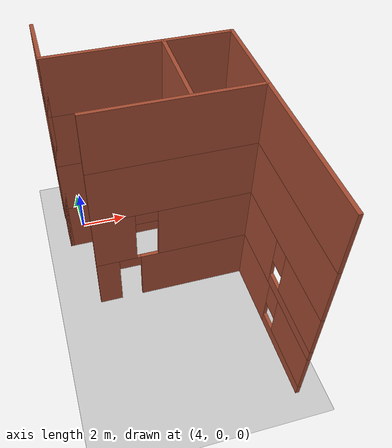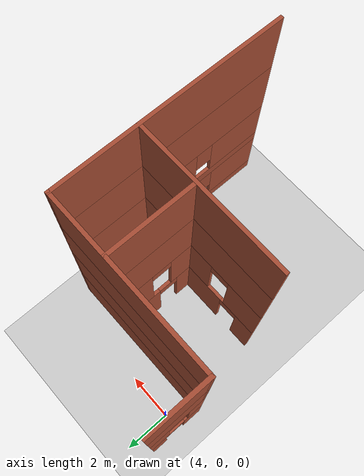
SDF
<sdf version="1.7">
 <world name="default">
  <model name="ground_plane">
   <static>1</static>
   <link name="link">
    <collision name="collision">
     <geometry><plane><normal>0 0 1</normal><size>300 300</size></plane></geometry>
     <surface>
      <contact><collide_bitmask>65535</collide_bitmask></contact>
      <friction><ode><mu>100</mu><mu2>50</mu2></ode></friction>
     </surface>
    </collision>
    <visual name="visual">
     <cast_shadows>0</cast_shadows>
     <geometry><plane><normal>0 0 1</normal><size>300 300</size></plane></geometry>
     <material>
      <script><uri>file://media/materials/scripts/gazebo.material</uri><name>Gazebo/Grey</name></script>
     </material>
    </visual>
   </link>
  </model>
  <model name="Drone_House">
   <pose>2.65602 -2.34694 0 0 -0 0</pose>
   <link name="Wall_101">
    <collision name="Wall_101_Collision">
     <geometry><box><size>6.5 0.15 2.5</size></box></geometry>
     <pose>0 0 1.25 0 -0 0</pose>
    </collision>
    <visual name="Wall_101_Visual">
     <pose>0 0 1.25 0 -0 0</pose>
     <geometry><box><size>6.5 0.15 2.5</size></box></geometry>
     <material>
      <script><uri>file://media/materials/scripts/gazebo.material</uri><name>Gazebo/Bricks</name></script>
      <ambient>1 1 1 1</ambient>
     </material>
     <meta><layer>2</layer></meta>
    </visual>
    <pose>4.55106 -2.25 5 0 -0 0</pose>
   </link>
   <link name="Wall_105">
    <collision name="Wall_105_Collision">
     <geometry><box><size>3.5 0.15 2.5</size></box></geometry>
     <pose>0 0 1.25 0 -0 0</pose>
    </collision>
    <visual name="Wall_105_Visual">
     <pose>0 0 1.25 0 -0 0</pose>
     <geometry><box><size>3.5 0.15 2.5</size></box></geometry>
     <material>
      <script><uri>file://media/materials/scripts/gazebo.material</uri><name>Gazebo/Bricks</name></script>
      <ambient>1 1 1 1</ambient>
     </material>
     <meta><layer>2</layer></meta>
    </visual>
    <pose>5.09404 -0.429379 5 0 -0 -1.5708</pose>
   </link>
   <link name="Wall_116">
    <collision name="Wall_116_Collision">
     <geometry><box><size>2.5 0.15 2.5</size></box></geometry>
     <pose>0 0 1.25 0 -0 0</pose>
    </collision>
    <visual name="Wall_116_Visual">
     <pose>0 0 1.25 0 -0 0</pose>
     <geometry><box><size>2.5 0.15 2.5</size></box></geometry>
     <material>
      <script><uri>file://media/materials/scripts/gazebo.material</uri><name>Gazebo/Bricks</name></script>
      <ambient>1 1 1 1</ambient>
     </material>
     <meta><layer>3</layer></meta>
    </visual>
    <pose>0.626064 2.425 7.5 0 -0 -1.5708</pose>
   </link>
   <link name="Wall_117">
    <collision name="Wall_117_Collision">
     <geometry><box><size>7.25 0.15 2.5</size></box></geometry>
     <pose>0 0 1.25 0 -0 0</pose>
    </collision>
    <visual name="Wall_117_Visual">
     <pose>0 0 1.25 0 -0 0</pose>
     <geometry><box><size>7.25 0.15 2.5</size></box></geometry>
     <material>
      <script><uri>file://media/materials/scripts/gazebo.material</uri><name>Gazebo/Bricks</name></script>
      <ambient>1 1 1 1</ambient>
     </material>
     <meta><layer>3</layer></meta>
    </visual>
    <pose>4.17606 1.25 7.5 0 -0 0</pose>
   </link>
   <link name="Wall_120">
    <collision name="Wall_120_Collision">
     <geometry><box><size>9.75 0.15 2.5</size></box></geometry>
     <pose>0 0 1.25 0 -0 0</pose>
    </collision>
    <visual name="Wall_120_Visual">
     <pose>0 0 1.25 0 -0 0</pose>
     <geometry><box><size>9.75 0.15 2.5</size></box></geometry>
     <material>
      <script><uri>file://media/materials/scripts/gazebo.material</uri><name>Gazebo/Bricks</name></script>
      <ambient>1 1 1 1</ambient>
     </material>
     <meta><layer>3</layer></meta>
    </visual>
    <pose>7.72606 -3.55 7.5 0 -0 -1.5708</pose>
   </link>
   <link name="Wall_123">
    <collision name="Wall_123_Collision">
     <geometry><box><size>6.5 0.15 2.5</size></box></geometry>
     <pose>0 0 1.25 0 -0 0</pose>
    </collision>
    <visual name="Wall_123_Visual">
     <pose>0 0 1.25 0 -0 0</pose>
     <geometry><box><size>6.5 0.15 2.5</size></box></geometry>
     <material>
      <script><uri>file://media/materials/scripts/gazebo.material</uri><name>Gazebo/Bricks</name></script>
      <ambient>1 1 1 1</ambient>
     </material>
     <meta><layer>3</layer></meta>
    </visual>
    <pose>4.55106 -2.25 7.5 0 -0 0</pose>
   </link>
   <link name="Wall_127">
    <collision name="Wall_127_Collision">
     <geometry><box><size>3.5 0.15 2.5</size></box></geometry>
     <pose>0 0 1.25 0 -0 0</pose>
    </collision>
    <visual name="Wall_127_Visual">
     <pose>0 0 1.25 0 -0 0</pose>
     <geometry><box><size>3.5 0.15 2.5</size></box></geometry>
     <material>
      <script><uri>file://media/materials/scripts/gazebo.material</uri><name>Gazebo/Bricks</name></script>
      <ambient>1 1 1 1</ambient>
     </material>
     <meta><layer>3</layer></meta>
    </visual>
    <pose>5.09404 -0.429379 7.5 0 -0 -1.5708</pose>
   </link>
   <link name="Wall_18">
    <pose>0.626064 2.425 0 0 -0 -1.5708</pose>
    <visual name="Wall_18_Visual_0">
     <pose>-0.898715 0 1.25 0 -0 0</pose>
     <geometry><box><size>0.70257 0.15 2.5</size></box></geometry>
     <material>
      <script><uri>file://media/materials/scripts/gazebo.material</uri><name>Gazebo/Bricks</name></script>
      <ambient>1 1 1 1</ambient>
     </material>
     <meta><layer>0</layer></meta>
    </visual>
    <collision name="Wall_18_Collision_0">
     <geometry><box><size>0.70257 0.15 2.5</size></box></geometry>
     <pose>-0.898715 0 1.25 0 -0 0</pose>
    </collision>
    <visual name="Wall_18_Visual_1">
     <pose>0.801285 0 1.25 0 -0 0</pose>
     <geometry><box><size>0.89743 0.15 2.5</size></box></geometry>
     <material>
      <script><uri>file://media/materials/scripts/gazebo.material</uri><name>Gazebo/Bricks</name></script>
      <ambient>1 1 1 1</ambient>
     </material>
     <meta><layer>0</layer></meta>
    </visual>
    <collision name="Wall_18_Collision_1">
     <geometry><box><size>0.89743 0.15 2.5</size></box></geometry>
     <pose>0.801285 0 1.25 0 -0 0</pose>
    </collision>
    <visual name="Wall_18_Visual_2">
     <pose>-0.09743 0 2.25 0 -0 0</pose>
     <geometry><box><size>0.9 0.15 0.5</size></box></geometry>
     <material>
      <script><uri>file://media/materials/scripts/gazebo.material</uri><name>Gazebo/Bricks</name></script>
      <ambient>1 1 1 1</ambient>
     </material>
     <meta><layer>0</layer></meta>
    </visual>
    <collision name="Wall_18_Collision_2">
     <geometry><box><size>0.9 0.15 0.5</size></box></geometry>
     <pose>-0.09743 0 2.25 0 -0 0</pose>
    </collision>
   </link>
   <link name="Wall_19">
    <collision name="Wall_19_Collision">
     <geometry><box><size>7.25 0.15 2.5</size></box></geometry>
     <pose>0 0 1.25 0 -0 0</pose>
    </collision>
    <visual name="Wall_19_Visual">
     <pose>0 0 1.25 0 -0 0</pose>
     <geometry><box><size>7.25 0.15 2.5</size></box></geometry>
     <material>
      <script><uri>file://media/materials/scripts/gazebo.material</uri><name>Gazebo/Bricks</name></script>
      <ambient>1 1 1 1</ambient>
     </material>
     <meta><layer>0</layer></meta>
    </visual>
    <pose>4.17606 1.25 0 0 -0 0</pose>
   </link>
   <link name="Wall_23">
    <pose>7.72606 -3.55 0 0 -0 -1.5708</pose>
    <visual name="Wall_23_Visual_0">
     <pose>-1.69699 0 1.25 0 -0 0</pose>
     <geometry><box><size>6.35603 0.15 2.5</size></box></geometry>
     <material>
      <script><uri>file://media/materials/scripts/gazebo.material</uri><name>Gazebo/Bricks</name></script>
      <ambient>1 1 1 1</ambient>
     </material>
     <meta><layer>0</layer></meta>
    </visual>
    <collision name="Wall_23_Collision_0">
     <geometry><box><size>6.35603 0.15 2.5</size></box></geometry>
     <pose>-1.69699 0 1.25 0 -0 0</pose>
    </collision>
    <visual name="Wall_23_Visual_1">
     <pose>3.17801 0 0.25 0 -0 0</pose>
     <geometry><box><size>3.39397 0.15 0.5</size></box></geometry>
     <material>
      <script><uri>file://media/materials/scripts/gazebo.material</uri><name>Gazebo/Bricks</name></script>
      <ambient>1 1 1 1</ambient>
     </material>
     <meta><layer>0</layer></meta>
    </visual>
    <collision name="Wall_23_Collision_1">
     <geometry><box><size>3.39397 0.15 0.5</size></box></geometry>
     <pose>3.17801 0 0.25 0 -0 0</pose>
    </collision>
    <visual name="Wall_23_Visual_2">
     <pose>3.57801 0 1.5 0 -0 0</pose>
     <geometry><box><size>2.59397 0.15 2</size></box></geometry>
     <material>
      <script><uri>file://media/materials/scripts/gazebo.material</uri><name>Gazebo/Bricks</name></script>
      <ambient>1 1 1 1</ambient>
     </material>
     <meta><layer>0</layer></meta>
    </visual>
    <collision name="Wall_23_Collision_2">
     <geometry><box><size>2.59397 0.15 2</size></box></geometry>
     <pose>3.57801 0 1.5 0 -0 0</pose>
    </collision>
    <visual name="Wall_23_Visual_3">
     <pose>1.88103 0 1.9 0 -0 0</pose>
     <geometry><box><size>0.8 0.15 1.2</size></box></geometry>
     <material>
      <script><uri>file://media/materials/scripts/gazebo.material</uri><name>Gazebo/Bricks</name></script>
      <ambient>1 1 1 1</ambient>
     </material>
     <meta><layer>0</layer></meta>
    </visual>
    <collision name="Wall_23_Collision_3">
     <geometry><box><size>0.8 0.15 1.2</size></box></geometry>
     <pose>1.88103 0 1.9 0 -0 0</pose>
    </collision>
   </link>
   <link name="Wall_26">
    <pose>4.55106 -2.25 0 0 -0 0</pose>
    <visual name="Wall_26_Visual_0">
     <pose>-2.77552 0 1.25 0 -0 0</pose>
     <geometry><box><size>0.948955 0.15 2.5</size></box></geometry>
     <material>
      <script><uri>file://media/materials/scripts/gazebo.material</uri><name>Gazebo/Bricks</name></script>
      <ambient>1 1 1 1</ambient>
     </material>
     <meta><layer>0</layer></meta>
    </visual>
    <collision name="Wall_26_Collision_0">
     <geometry><box><size>0.948955 0.15 2.5</size></box></geometry>
     <pose>-2.77552 0 1.25 0 -0 0</pose>
    </collision>
    <visual name="Wall_26_Visual_1">
     <pose>0.924477 0 1.25 0 -0 0</pose>
     <geometry><box><size>4.65104 0.15 2.5</size></box></geometry>
     <material>
      <script><uri>file://media/materials/scripts/gazebo.material</uri><name>Gazebo/Bricks</name></script>
      <ambient>1 1 1 1</ambient>
     </material>
     <meta><layer>0</layer></meta>
    </visual>
    <collision name="Wall_26_Collision_1">
     <geometry><box><size>4.65104 0.15 2.5</size></box></geometry>
     <pose>0.924477 0 1.25 0 -0 0</pose>
    </collision>
    <visual name="Wall_26_Visual_2">
     <pose>-1.85105 0 2.25 0 -0 0</pose>
     <geometry><box><size>0.9 0.15 0.5</size></box></geometry>
     <material>
      <script><uri>file://media/materials/scripts/gazebo.material</uri><name>Gazebo/Bricks</name></script>
      <ambient>1 1 1 1</ambient>
     </material>
     <meta><layer>0</layer></meta>
    </visual>
    <collision name="Wall_26_Collision_2">
     <geometry><box><size>0.9 0.15 0.5</size></box></geometry>
     <pose>-1.85105 0 2.25 0 -0 0</pose>
    </collision>
   </link>
   <link name="Wall_33">
    <pose>5.09404 -0.429379 0 0 -0 -1.5708</pose>
    <visual name="Wall_33_Visual_0">
     <pose>-0.793691 0 1.25 0 -0 0</pose>
     <geometry><box><size>1.91262 0.15 2.5</size></box></geometry>
     <material>
      <script><uri>file://media/materials/scripts/gazebo.material</uri><name>Gazebo/Bricks</name></script>
      <ambient>1 1 1 1</ambient>
     </material>
     <meta><layer>0</layer></meta>
    </visual>
    <collision name="Wall_33_Collision_0">
     <geometry><box><size>1.91262 0.15 2.5</size></box></geometry>
     <pose>-0.793691 0 1.25 0 -0 0</pose>
    </collision>
    <visual name="Wall_33_Visual_1">
     <pose>1.40631 0 1.25 0 -0 0</pose>
     <geometry><box><size>0.687383 0.15 2.5</size></box></geometry>
     <material>
      <script><uri>file://media/materials/scripts/gazebo.material</uri><name>Gazebo/Bricks</name></script>
      <ambient>1 1 1 1</ambient>
     </material>
     <meta><layer>0</layer></meta>
    </visual>
    <collision name="Wall_33_Collision_1">
     <geometry><box><size>0.687383 0.15 2.5</size></box></geometry>
     <pose>1.40631 0 1.25 0 -0 0</pose>
    </collision>
    <visual name="Wall_33_Visual_2">
     <pose>0.612617 0 2.25 0 -0 0</pose>
     <geometry><box><size>0.9 0.15 0.5</size></box></geometry>
     <material>
      <script><uri>file://media/materials/scripts/gazebo.material</uri><name>Gazebo/Bricks</name></script>
      <ambient>1 1 1 1</ambient>
     </material>
     <meta><layer>0</layer></meta>
    </visual>
    <collision name="Wall_33_Collision_2">
     <geometry><box><size>0.9 0.15 0.5</size></box></geometry>
     <pose>0.612617 0 2.25 0 -0 0</pose>
    </collision>
   </link>
   <link name="Wall_45">
    <pose>0.626064 2.425 2.5 0 -0 -1.5708</pose>
    <visual name="Wall_45_Visual_0">
     <pose>-0.818915 0 1.25 0 -0 0</pose>
     <geometry><box><size>0.862171 0.15 2.5</size></box></geometry>
     <material>
      <script><uri>file://media/materials/scripts/gazebo.material</uri><name>Gazebo/Bricks</name></script>
      <ambient>1 1 1 1</ambient>
     </material>
     <meta><layer>1</layer></meta>
    </visual>
    <collision name="Wall_45_Collision_0">
     <geometry><box><size>0.862171 0.15 2.5</size></box></geometry>
     <pose>-0.818915 0 1.25 0 -0 0</pose>
    </collision>
    <visual name="Wall_45_Visual_1">
     <pose>0.881085 0 1.25 0 -0 0</pose>
     <geometry><box><size>0.737829 0.15 2.5</size></box></geometry>
     <material>
      <script><uri>file://media/materials/scripts/gazebo.material</uri><name>Gazebo/Bricks</name></script>
      <ambient>1 1 1 1</ambient>
     </material>
     <meta><layer>1</layer></meta>
    </visual>
    <collision name="Wall_45_Collision_1">
     <geometry><box><size>0.737829 0.15 2.5</size></box></geometry>
     <pose>0.881085 0 1.25 0 -0 0</pose>
    </collision>
    <visual name="Wall_45_Visual_2">
     <pose>0.062171 0 2.25 0 -0 0</pose>
     <geometry><box><size>0.9 0.15 0.5</size></box></geometry>
     <material>
      <script><uri>file://media/materials/scripts/gazebo.material</uri><name>Gazebo/Bricks</name></script>
      <ambient>1 1 1 1</ambient>
     </material>
     <meta><layer>1</layer></meta>
    </visual>
    <collision name="Wall_45_Collision_2">
     <geometry><box><size>0.9 0.15 0.5</size></box></geometry>
     <pose>0.062171 0 2.25 0 -0 0</pose>
    </collision>
   </link>
   <link name="Wall_46">
    <collision name="Wall_46_Collision">
     <geometry><box><size>7.25 0.15 2.5</size></box></geometry>
     <pose>0 0 1.25 0 -0 0</pose>
    </collision>
    <visual name="Wall_46_Visual">
     <pose>0 0 1.25 0 -0 0</pose>
     <geometry><box><size>7.25 0.15 2.5</size></box></geometry>
     <material>
      <script><uri>file://media/materials/scripts/gazebo.material</uri><name>Gazebo/Bricks</name></script>
      <ambient>1 1 1 1</ambient>
     </material>
     <meta><layer>1</layer></meta>
    </visual>
    <pose>4.17606 1.25 2.5 0 -0 0</pose>
   </link>
   <link name="Wall_49">
    <pose>7.72606 -3.55 2.5 0 -0 -1.5708</pose>
    <visual name="Wall_49_Visual_0">
     <pose>-1.77679 0 1.25 0 -0 0</pose>
     <geometry><box><size>6.19643 0.15 2.5</size></box></geometry>
     <material>
      <script><uri>file://media/materials/scripts/gazebo.material</uri><name>Gazebo/Bricks</name></script>
      <ambient>1 1 1 1</ambient>
     </material>
     <meta><layer>1</layer></meta>
    </visual>
    <collision name="Wall_49_Collision_0">
     <geometry><box><size>6.19643 0.15 2.5</size></box></geometry>
     <pose>-1.77679 0 1.25 0 -0 0</pose>
    </collision>
    <visual name="Wall_49_Visual_1">
     <pose>3.09821 0 0.25 0 -0 0</pose>
     <geometry><box><size>3.55357 0.15 0.5</size></box></geometry>
     <material>
      <script><uri>file://media/materials/scripts/gazebo.material</uri><name>Gazebo/Bricks</name></script>
      <ambient>1 1 1 1</ambient>
     </material>
     <meta><layer>1</layer></meta>
    </visual>
    <collision name="Wall_49_Collision_1">
     <geometry><box><size>3.55357 0.15 0.5</size></box></geometry>
     <pose>3.09821 0 0.25 0 -0 0</pose>
    </collision>
    <visual name="Wall_49_Visual_2">
     <pose>3.49821 0 1.5 0 -0 0</pose>
     <geometry><box><size>2.75357 0.15 2</size></box></geometry>
     <material>
      <script><uri>file://media/materials/scripts/gazebo.material</uri><name>Gazebo/Bricks</name></script>
      <ambient>1 1 1 1</ambient>
     </material>
     <meta><layer>1</layer></meta>
    </visual>
    <collision name="Wall_49_Collision_2">
     <geometry><box><size>2.75357 0.15 2</size></box></geometry>
     <pose>3.49821 0 1.5 0 -0 0</pose>
    </collision>
    <visual name="Wall_49_Visual_3">
     <pose>1.72143 0 1.9 0 -0 0</pose>
     <geometry><box><size>0.8 0.15 1.2</size></box></geometry>
     <material>
      <script><uri>file://media/materials/scripts/gazebo.material</uri><name>Gazebo/Bricks</name></script>
      <ambient>1 1 1 1</ambient>
     </material>
     <meta><layer>1</layer></meta>
    </visual>
    <collision name="Wall_49_Collision_3">
     <geometry><box><size>0.8 0.15 1.2</size></box></geometry>
     <pose>1.72143 0 1.9 0 -0 0</pose>
    </collision>
   </link>
   <link name="Wall_52">
    <pose>4.55106 -2.25 2.5 0 -0 0</pose>
    <visual name="Wall_52_Visual_0">
     <pose>-2.40312 0 1.25 0 -0 0</pose>
     <geometry><box><size>1.69376 0.15 2.5</size></box></geometry>
     <material>
      <script><uri>file://media/materials/scripts/gazebo.material</uri><name>Gazebo/Bricks</name></script>
      <ambient>1 1 1 1</ambient>
     </material>
     <meta><layer>1</layer></meta>
    </visual>
    <collision name="Wall_52_Collision_0">
     <geometry><box><size>1.69376 0.15 2.5</size></box></geometry>
     <pose>-2.40312 0 1.25 0 -0 0</pose>
    </collision>
    <visual name="Wall_52_Visual_1">
     <pose>1.29688 0 1.25 0 -0 0</pose>
     <geometry><box><size>3.90624 0.15 2.5</size></box></geometry>
     <material>
      <script><uri>file://media/materials/scripts/gazebo.material</uri><name>Gazebo/Bricks</name></script>
      <ambient>1 1 1 1</ambient>
     </material>
     <meta><layer>1</layer></meta>
    </visual>
    <collision name="Wall_52_Collision_1">
     <geometry><box><size>3.90624 0.15 2.5</size></box></geometry>
     <pose>1.29688 0 1.25 0 -0 0</pose>
    </collision>
    <visual name="Wall_52_Visual_2">
     <pose>-1.10624 0 2.25 0 -0 0</pose>
     <geometry><box><size>0.9 0.15 0.5</size></box></geometry>
     <material>
      <script><uri>file://media/materials/scripts/gazebo.material</uri><name>Gazebo/Bricks</name></script>
      <ambient>1 1 1 1</ambient>
     </material>
     <meta><layer>1</layer></meta>
    </visual>
    <collision name="Wall_52_Collision_2">
     <geometry><box><size>0.9 0.15 0.5</size></box></geometry>
     <pose>-1.10624 0 2.25 0 -0 0</pose>
    </collision>
   </link>
   <link name="Wall_56">
    <pose>5.09404 -0.429379 2.5 0 -0 -1.5708</pose>
    <visual name="Wall_56_Visual_0">
     <pose>-0.953293 0 1.25 0 -0 0</pose>
     <geometry><box><size>1.59342 0.15 2.5</size></box></geometry>
     <material>
      <script><uri>file://media/materials/scripts/gazebo.material</uri><name>Gazebo/Bricks</name></script>
      <ambient>1 1 1 1</ambient>
     </material>
     <meta><layer>1</layer></meta>
    </visual>
    <collision name="Wall_56_Collision_0">
     <geometry><box><size>1.59342 0.15 2.5</size></box></geometry>
     <pose>-0.953293 0 1.25 0 -0 0</pose>
    </collision>
    <visual name="Wall_56_Visual_1">
     <pose>1.24671 0 1.25 0 -0 0</pose>
     <geometry><box><size>1.00659 0.15 2.5</size></box></geometry>
     <material>
      <script><uri>file://media/materials/scripts/gazebo.material</uri><name>Gazebo/Bricks</name></script>
      <ambient>1 1 1 1</ambient>
     </material>
     <meta><layer>1</layer></meta>
    </visual>
    <collision name="Wall_56_Collision_1">
     <geometry><box><size>1.00659 0.15 2.5</size></box></geometry>
     <pose>1.24671 0 1.25 0 -0 0</pose>
    </collision>
    <visual name="Wall_56_Visual_2">
     <pose>0.293415 0 2.25 0 -0 0</pose>
     <geometry><box><size>0.9 0.15 0.5</size></box></geometry>
     <material>
      <script><uri>file://media/materials/scripts/gazebo.material</uri><name>Gazebo/Bricks</name></script>
      <ambient>1 1 1 1</ambient>
     </material>
     <meta><layer>1</layer></meta>
    </visual>
    <collision name="Wall_56_Collision_2">
     <geometry><box><size>0.9 0.15 0.5</size></box></geometry>
     <pose>0.293415 0 2.25 0 -0 0</pose>
    </collision>
   </link>
   <link name="Wall_94">
    <collision name="Wall_94_Collision">
     <geometry><box><size>2.5 0.15 2.5</size></box></geometry>
     <pose>0 0 1.25 0 -0 0</pose>
    </collision>
    <visual name="Wall_94_Visual">
     <pose>0 0 1.25 0 -0 0</pose>
     <geometry><box><size>2.5 0.15 2.5</size></box></geometry>
     <material>
      <script><uri>file://media/materials/scripts/gazebo.material</uri><name>Gazebo/Bricks</name></script>
      <ambient>1 1 1 1</ambient>
     </material>
     <meta><layer>2</layer></meta>
    </visual>
    <pose>0.626064 2.425 5 0 -0 -1.5708</pose>
   </link>
   <link name="Wall_95">
    <collision name="Wall_95_Collision">
     <geometry><box><size>7.25 0.15 2.5</size></box></geometry>
     <pose>0 0 1.25 0 -0 0</pose>
    </collision>
    <visual name="Wall_95_Visual">
     <pose>0 0 1.25 0 -0 0</pose>
     <geometry><box><size>7.25 0.15 2.5</size></box></geometry>
     <material>
      <script><uri>file://media/materials/scripts/gazebo.material</uri><name>Gazebo/Bricks</name></script>
      <ambient>1 1 1 1</ambient>
     </material>
     <meta><layer>2</layer></meta>
    </visual>
    <pose>4.17606 1.25 5 0 -0 0</pose>
   </link>
   <link name="Wall_98">
    <collision name="Wall_98_Collision">
     <geometry><box><size>9.75 0.15 2.5</size></box></geometry>
     <pose>0 0 1.25 0 -0 0</pose>
    </collision>
    <visual name="Wall_98_Visual">
     <pose>0 0 1.25 0 -0 0</pose>
     <geometry><box><size>9.75 0.15 2.5</size></box></geometry>
     <material>
      <script><uri>file://media/materials/scripts/gazebo.material</uri><name>Gazebo/Bricks</name></script>
      <ambient>1 1 1 1</ambient>
     </material>
     <meta><layer>2</layer></meta>
    </visual>
    <pose>7.72606 -3.55 5 0 -0 -1.5708</pose>
   </link>
   <static>1</static>
  </model>
 </world>
</sdf>
